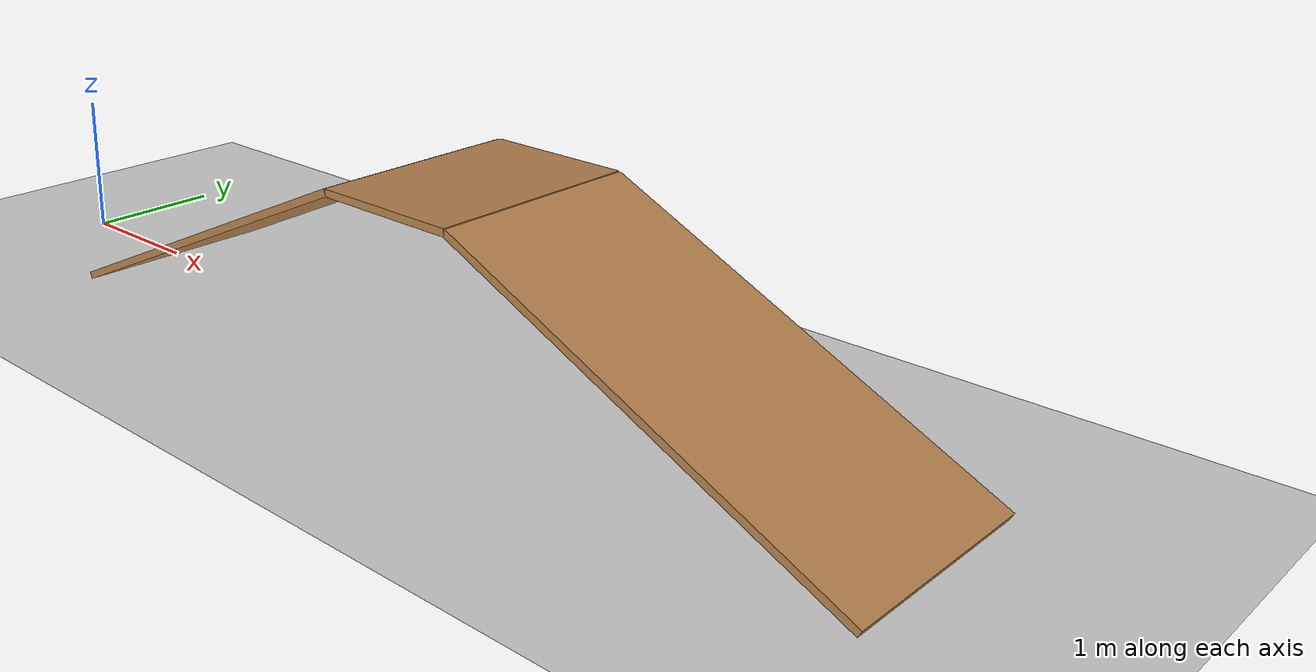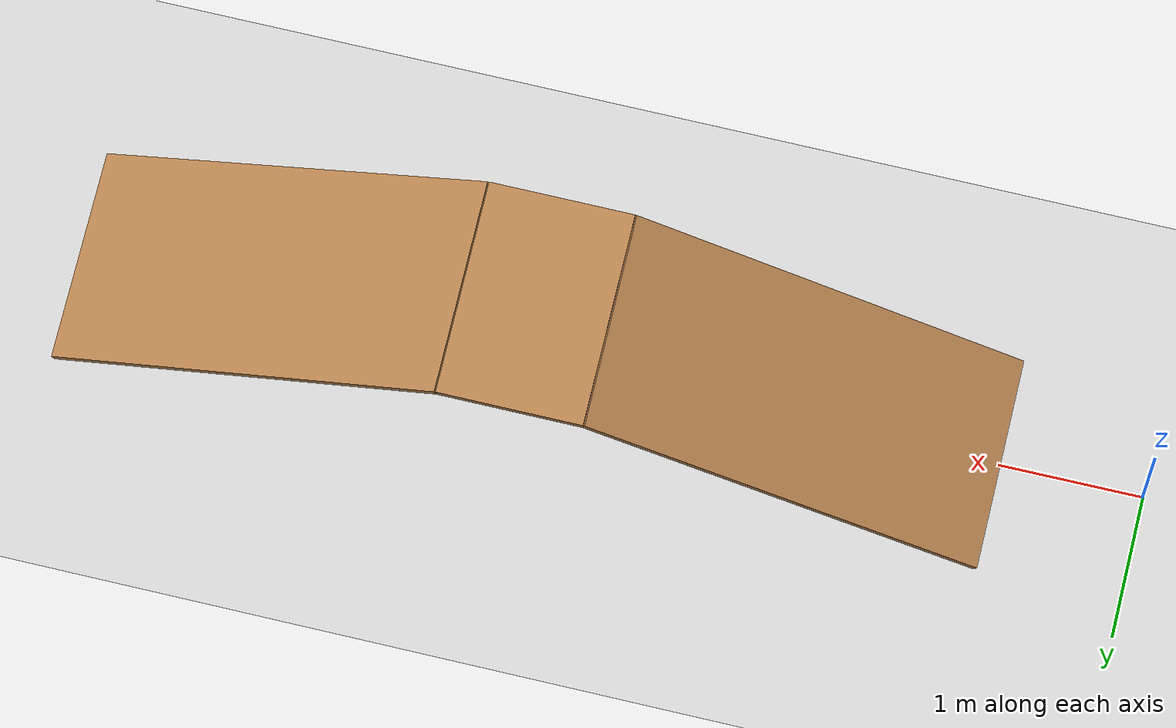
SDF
<?xml version="1.0" ?>
<!-- 由 omni_world.py 自动生成: scene=slope seed=None -->
<sdf version="1.5">
  <world name="slope">
    <physics type="ode">
      <type>world</type>
      <max_step_size>0.001</max_step_size>
      <real_time_update_rate>1000</real_time_update_rate>
      <iters>500</iters>
    </physics>
    <include><uri>model://sun</uri></include>
    <include><uri>model://ground_plane</uri></include>
    <model name="ramp_up">
      <static>true</static>
      <pose>2.359 0.000 0.659 0.0000 -0.4363 0.0000</pose>
      <link name="link">
        <collision name="collision">
          <geometry><box><size>3.000 1.500 0.050</size></box></geometry>
          <surface><friction><ode><mu>1.2</mu><mu2>1.2</mu2></ode></friction></surface>
        </collision>
        <visual name="visual">
          <geometry><box><size>3.000 1.500 0.050</size></box></geometry>
          <material><script><uri>file://media/materials/scripts/gazebo.material</uri>
            <name>Gazebo/Wood</name></script></material>
        </visual>
      </link>
    </model>
    <model name="platform">
      <static>true</static>
      <pose>4.219 0.000 1.293 0.0000 0.0000 0.0000</pose>
      <link name="link">
        <collision name="collision">
          <geometry><box><size>1.000 1.500 0.050</size></box></geometry>
          <surface><friction><ode><mu>1.2</mu><mu2>1.2</mu2></ode></friction></surface>
        </collision>
        <visual name="visual">
          <geometry><box><size>1.000 1.500 0.050</size></box></geometry>
          <material><script><uri>file://media/materials/scripts/gazebo.material</uri>
            <name>Gazebo/Wood</name></script></material>
        </visual>
      </link>
    </model>
    <model name="ramp_down">
      <static>true</static>
      <pose>6.078 0.000 0.659 0.0000 0.4363 0.0000</pose>
      <link name="link">
        <collision name="collision">
          <geometry><box><size>3.000 1.500 0.050</size></box></geometry>
          <surface><friction><ode><mu>1.2</mu><mu2>1.2</mu2></ode></friction></surface>
        </collision>
        <visual name="visual">
          <geometry><box><size>3.000 1.500 0.050</size></box></geometry>
          <material><script><uri>file://media/materials/scripts/gazebo.material</uri>
            <name>Gazebo/Wood</name></script></material>
        </visual>
      </link>
    </model>

  </world>
</sdf>
